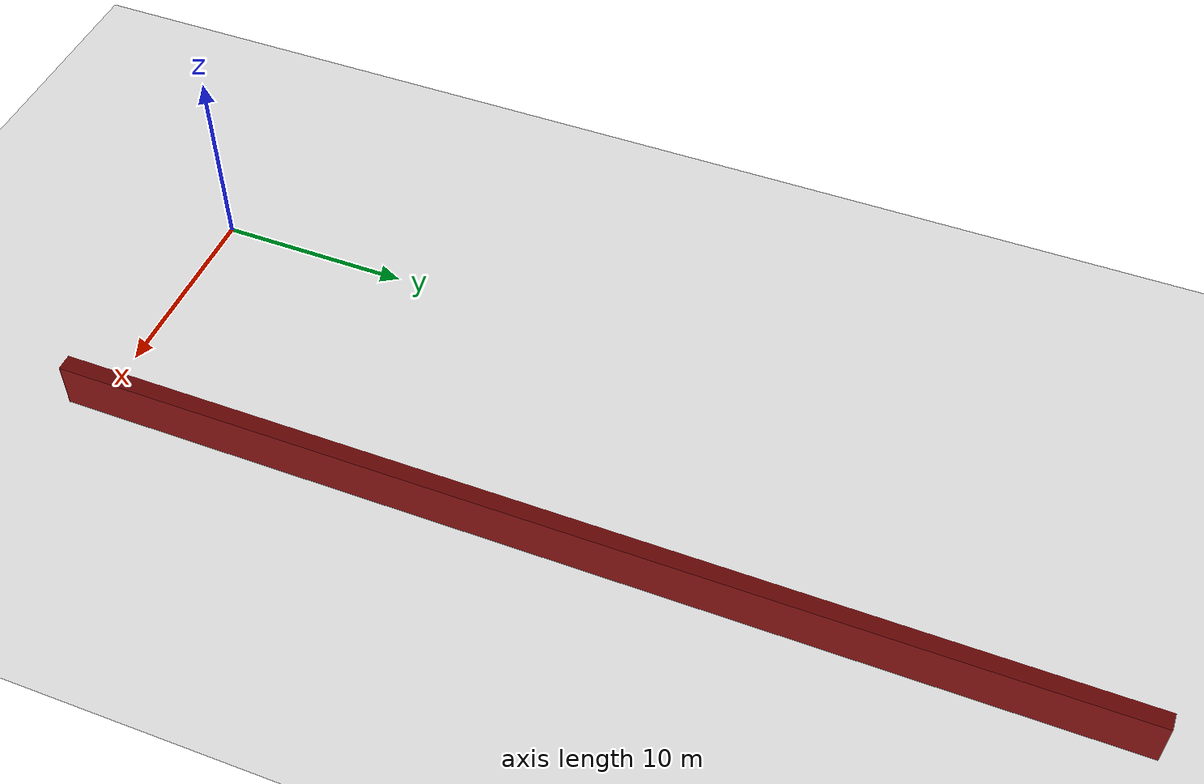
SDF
<sdf version="1.4">
 <world name="1_wall">
  <model name="ground_plane">
   <static>1</static>
   <link name="link">
    <collision name="collision">
     <geometry><plane><normal>0 0 1</normal><size>1000 1000</size></plane></geometry>
     <surface><friction><ode><mu>100</mu><mu2>50</mu2></ode></friction></surface>
    </collision>
    <visual name="visual">
     <cast_shadows>0</cast_shadows>
     <geometry><plane><normal>0 0 1</normal><size>10000 10000</size></plane></geometry>
     <material>
      <script><uri>file://media/materials/scripts/gazebo.material</uri><name>Gazebo/Grey</name></script>
     </material>
    </visual>
    <velocity_decay><linear>0</linear><angular>0</angular></velocity_decay>
   </link>
  </model>
  <model name="Wall_288">
   <static>1</static>
   <link name="Wall_288">
    <collision name="Wall_Collision_288">
     <geometry><box><size>53.65 0.05 2.5</size></box></geometry>
     <pose>0 0 1.25 0 -0 0</pose>
    </collision>
    <visual name="Wall_Visual_288">
     <pose>0 0 1.25 0 -0 0</pose>
     <geometry><box><size>53.65 0.05 2.5</size></box></geometry>
     <material>
      <script><uri>file://media/materials/scripts/gazebo.material</uri><name>Gazebo/Red</name></script>
     </material>
    </visual>
    <velocity_decay><linear>0</linear><angular>0</angular></velocity_decay>
    <pose>12.9 25.3 0 0 0 1.5707963267948966</pose>
   </link>
  </model>
  <model name="Wall_289">
   <static>1</static>
   <link name="Wall_289">
    <collision name="Wall_Collision_289">
     <geometry><box><size>53.65 0.05 2.5</size></box></geometry>
     <pose>0 0 1.25 0 -0 0</pose>
    </collision>
    <visual name="Wall_Visual_289">
     <pose>0 0 1.25 0 -0 0</pose>
     <geometry><box><size>53.65 0.05 2.5</size></box></geometry>
     <material>
      <script><uri>file://media/materials/scripts/gazebo.material</uri><name>Gazebo/Red</name></script>
     </material>
    </visual>
    <velocity_decay><linear>0</linear><angular>0</angular></velocity_decay>
    <pose>12.95 25.3 0 0 0 1.5707963267948966</pose>
   </link>
  </model>
  <model name="Wall_290">
   <static>1</static>
   <link name="Wall_290">
    <collision name="Wall_Collision_290">
     <geometry><box><size>53.65 0.05 2.5</size></box></geometry>
     <pose>0 0 1.25 0 -0 0</pose>
    </collision>
    <visual name="Wall_Visual_290">
     <pose>0 0 1.25 0 -0 0</pose>
     <geometry><box><size>53.65 0.05 2.5</size></box></geometry>
     <material>
      <script><uri>file://media/materials/scripts/gazebo.material</uri><name>Gazebo/Red</name></script>
     </material>
    </visual>
    <velocity_decay><linear>0</linear><angular>0</angular></velocity_decay>
    <pose>13.0 25.3 0 0 0 1.5707963267948966</pose>
   </link>
  </model>
  <model name="Wall_291">
   <static>1</static>
   <link name="Wall_291">
    <collision name="Wall_Collision_291">
     <geometry><box><size>53.65 0.05 2.5</size></box></geometry>
     <pose>0 0 1.25 0 -0 0</pose>
    </collision>
    <visual name="Wall_Visual_291">
     <pose>0 0 1.25 0 -0 0</pose>
     <geometry><box><size>53.65 0.05 2.5</size></box></geometry>
     <material>
      <script><uri>file://media/materials/scripts/gazebo.material</uri><name>Gazebo/Red</name></script>
     </material>
    </visual>
    <velocity_decay><linear>0</linear><angular>0</angular></velocity_decay>
    <pose>13.05 25.3 0 0 0 1.5707963267948966</pose>
   </link>
  </model>
  <model name="Wall_292">
   <static>1</static>
   <link name="Wall_292">
    <collision name="Wall_Collision_292">
     <geometry><box><size>53.65 0.05 2.5</size></box></geometry>
     <pose>0 0 1.25 0 -0 0</pose>
    </collision>
    <visual name="Wall_Visual_292">
     <pose>0 0 1.25 0 -0 0</pose>
     <geometry><box><size>53.65 0.05 2.5</size></box></geometry>
     <material>
      <script><uri>file://media/materials/scripts/gazebo.material</uri><name>Gazebo/Red</name></script>
     </material>
    </visual>
    <velocity_decay><linear>0</linear><angular>0</angular></velocity_decay>
    <pose>13.1 25.3 0 0 0 1.5707963267948966</pose>
   </link>
  </model>
  <model name="Wall_293">
   <static>1</static>
   <link name="Wall_293">
    <collision name="Wall_Collision_293">
     <geometry><box><size>53.65 0.05 2.5</size></box></geometry>
     <pose>0 0 1.25 0 -0 0</pose>
    </collision>
    <visual name="Wall_Visual_293">
     <pose>0 0 1.25 0 -0 0</pose>
     <geometry><box><size>53.65 0.05 2.5</size></box></geometry>
     <material>
      <script><uri>file://media/materials/scripts/gazebo.material</uri><name>Gazebo/Red</name></script>
     </material>
    </visual>
    <velocity_decay><linear>0</linear><angular>0</angular></velocity_decay>
    <pose>13.15 25.3 0 0 0 1.5707963267948966</pose>
   </link>
  </model>
  <model name="Wall_294">
   <static>1</static>
   <link name="Wall_294">
    <collision name="Wall_Collision_294">
     <geometry><box><size>53.65 0.05 2.5</size></box></geometry>
     <pose>0 0 1.25 0 -0 0</pose>
    </collision>
    <visual name="Wall_Visual_294">
     <pose>0 0 1.25 0 -0 0</pose>
     <geometry><box><size>53.65 0.05 2.5</size></box></geometry>
     <material>
      <script><uri>file://media/materials/scripts/gazebo.material</uri><name>Gazebo/Red</name></script>
     </material>
    </visual>
    <velocity_decay><linear>0</linear><angular>0</angular></velocity_decay>
    <pose>13.2 25.3 0 0 0 1.5707963267948966</pose>
   </link>
  </model>
  <model name="Wall_295">
   <static>1</static>
   <link name="Wall_295">
    <collision name="Wall_Collision_295">
     <geometry><box><size>53.65 0.05 2.5</size></box></geometry>
     <pose>0 0 1.25 0 -0 0</pose>
    </collision>
    <visual name="Wall_Visual_295">
     <pose>0 0 1.25 0 -0 0</pose>
     <geometry><box><size>53.65 0.05 2.5</size></box></geometry>
     <material>
      <script><uri>file://media/materials/scripts/gazebo.material</uri><name>Gazebo/Red</name></script>
     </material>
    </visual>
    <velocity_decay><linear>0</linear><angular>0</angular></velocity_decay>
    <pose>13.25 25.3 0 0 0 1.5707963267948966</pose>
   </link>
  </model>
  <model name="Wall_296">
   <static>1</static>
   <link name="Wall_296">
    <collision name="Wall_Collision_296">
     <geometry><box><size>53.65 0.05 2.5</size></box></geometry>
     <pose>0 0 1.25 0 -0 0</pose>
    </collision>
    <visual name="Wall_Visual_296">
     <pose>0 0 1.25 0 -0 0</pose>
     <geometry><box><size>53.65 0.05 2.5</size></box></geometry>
     <material>
      <script><uri>file://media/materials/scripts/gazebo.material</uri><name>Gazebo/Red</name></script>
     </material>
    </visual>
    <velocity_decay><linear>0</linear><angular>0</angular></velocity_decay>
    <pose>13.3 25.3 0 0 0 1.5707963267948966</pose>
   </link>
  </model>
  <model name="Wall_297">
   <static>1</static>
   <link name="Wall_297">
    <collision name="Wall_Collision_297">
     <geometry><box><size>53.65 0.05 2.5</size></box></geometry>
     <pose>0 0 1.25 0 -0 0</pose>
    </collision>
    <visual name="Wall_Visual_297">
     <pose>0 0 1.25 0 -0 0</pose>
     <geometry><box><size>53.65 0.05 2.5</size></box></geometry>
     <material>
      <script><uri>file://media/materials/scripts/gazebo.material</uri><name>Gazebo/Red</name></script>
     </material>
    </visual>
    <velocity_decay><linear>0</linear><angular>0</angular></velocity_decay>
    <pose>13.35 25.3 0 0 0 1.5707963267948966</pose>
   </link>
  </model>
  <model name="Wall_298">
   <static>1</static>
   <link name="Wall_298">
    <collision name="Wall_Collision_298">
     <geometry><box><size>53.65 0.05 2.5</size></box></geometry>
     <pose>0 0 1.25 0 -0 0</pose>
    </collision>
    <visual name="Wall_Visual_298">
     <pose>0 0 1.25 0 -0 0</pose>
     <geometry><box><size>53.65 0.05 2.5</size></box></geometry>
     <material>
      <script><uri>file://media/materials/scripts/gazebo.material</uri><name>Gazebo/Red</name></script>
     </material>
    </visual>
    <velocity_decay><linear>0</linear><angular>0</angular></velocity_decay>
    <pose>13.4 25.3 0 0 0 1.5707963267948966</pose>
   </link>
  </model>
  <model name="Wall_299">
   <static>1</static>
   <link name="Wall_299">
    <collision name="Wall_Collision_299">
     <geometry><box><size>53.65 0.05 2.5</size></box></geometry>
     <pose>0 0 1.25 0 -0 0</pose>
    </collision>
    <visual name="Wall_Visual_299">
     <pose>0 0 1.25 0 -0 0</pose>
     <geometry><box><size>53.65 0.05 2.5</size></box></geometry>
     <material>
      <script><uri>file://media/materials/scripts/gazebo.material</uri><name>Gazebo/Red</name></script>
     </material>
    </visual>
    <velocity_decay><linear>0</linear><angular>0</angular></velocity_decay>
    <pose>13.45 25.3 0 0 0 1.5707963267948966</pose>
   </link>
  </model>
  <model name="Wall_300">
   <static>1</static>
   <link name="Wall_300">
    <collision name="Wall_Collision_300">
     <geometry><box><size>53.65 0.05 2.5</size></box></geometry>
     <pose>0 0 1.25 0 -0 0</pose>
    </collision>
    <visual name="Wall_Visual_300">
     <pose>0 0 1.25 0 -0 0</pose>
     <geometry><box><size>53.65 0.05 2.5</size></box></geometry>
     <material>
      <script><uri>file://media/materials/scripts/gazebo.material</uri><name>Gazebo/Red</name></script>
     </material>
    </visual>
    <velocity_decay><linear>0</linear><angular>0</angular></velocity_decay>
    <pose>13.5 25.3 0 0 0 1.5707963267948966</pose>
   </link>
  </model>
  <model name="Wall_301">
   <static>1</static>
   <link name="Wall_301">
    <collision name="Wall_Collision_301">
     <geometry><box><size>53.65 0.05 2.5</size></box></geometry>
     <pose>0 0 1.25 0 -0 0</pose>
    </collision>
    <visual name="Wall_Visual_301">
     <pose>0 0 1.25 0 -0 0</pose>
     <geometry><box><size>53.65 0.05 2.5</size></box></geometry>
     <material>
      <script><uri>file://media/materials/scripts/gazebo.material</uri><name>Gazebo/Red</name></script>
     </material>
    </visual>
    <velocity_decay><linear>0</linear><angular>0</angular></velocity_decay>
    <pose>13.55 25.3 0 0 0 1.5707963267948966</pose>
   </link>
  </model>
  <model name="Wall_302">
   <static>1</static>
   <link name="Wall_302">
    <collision name="Wall_Collision_302">
     <geometry><box><size>53.65 0.05 2.5</size></box></geometry>
     <pose>0 0 1.25 0 -0 0</pose>
    </collision>
    <visual name="Wall_Visual_302">
     <pose>0 0 1.25 0 -0 0</pose>
     <geometry><box><size>53.65 0.05 2.5</size></box></geometry>
     <material>
      <script><uri>file://media/materials/scripts/gazebo.material</uri><name>Gazebo/Red</name></script>
     </material>
    </visual>
    <velocity_decay><linear>0</linear><angular>0</angular></velocity_decay>
    <pose>13.6 25.3 0 0 0 1.5707963267948966</pose>
   </link>
  </model>
  <model name="Wall_303">
   <static>1</static>
   <link name="Wall_303">
    <collision name="Wall_Collision_303">
     <geometry><box><size>53.65 0.05 2.5</size></box></geometry>
     <pose>0 0 1.25 0 -0 0</pose>
    </collision>
    <visual name="Wall_Visual_303">
     <pose>0 0 1.25 0 -0 0</pose>
     <geometry><box><size>53.65 0.05 2.5</size></box></geometry>
     <material>
      <script><uri>file://media/materials/scripts/gazebo.material</uri><name>Gazebo/Red</name></script>
     </material>
    </visual>
    <velocity_decay><linear>0</linear><angular>0</angular></velocity_decay>
    <pose>13.65 25.3 0 0 0 1.5707963267948966</pose>
   </link>
  </model>
  <model name="Wall_304">
   <static>1</static>
   <link name="Wall_304">
    <collision name="Wall_Collision_304">
     <geometry><box><size>53.65 0.05 2.5</size></box></geometry>
     <pose>0 0 1.25 0 -0 0</pose>
    </collision>
    <visual name="Wall_Visual_304">
     <pose>0 0 1.25 0 -0 0</pose>
     <geometry><box><size>53.65 0.05 2.5</size></box></geometry>
     <material>
      <script><uri>file://media/materials/scripts/gazebo.material</uri><name>Gazebo/Red</name></script>
     </material>
    </visual>
    <velocity_decay><linear>0</linear><angular>0</angular></velocity_decay>
    <pose>13.7 25.3 0 0 0 1.5707963267948966</pose>
   </link>
  </model>
 </world>
</sdf>
